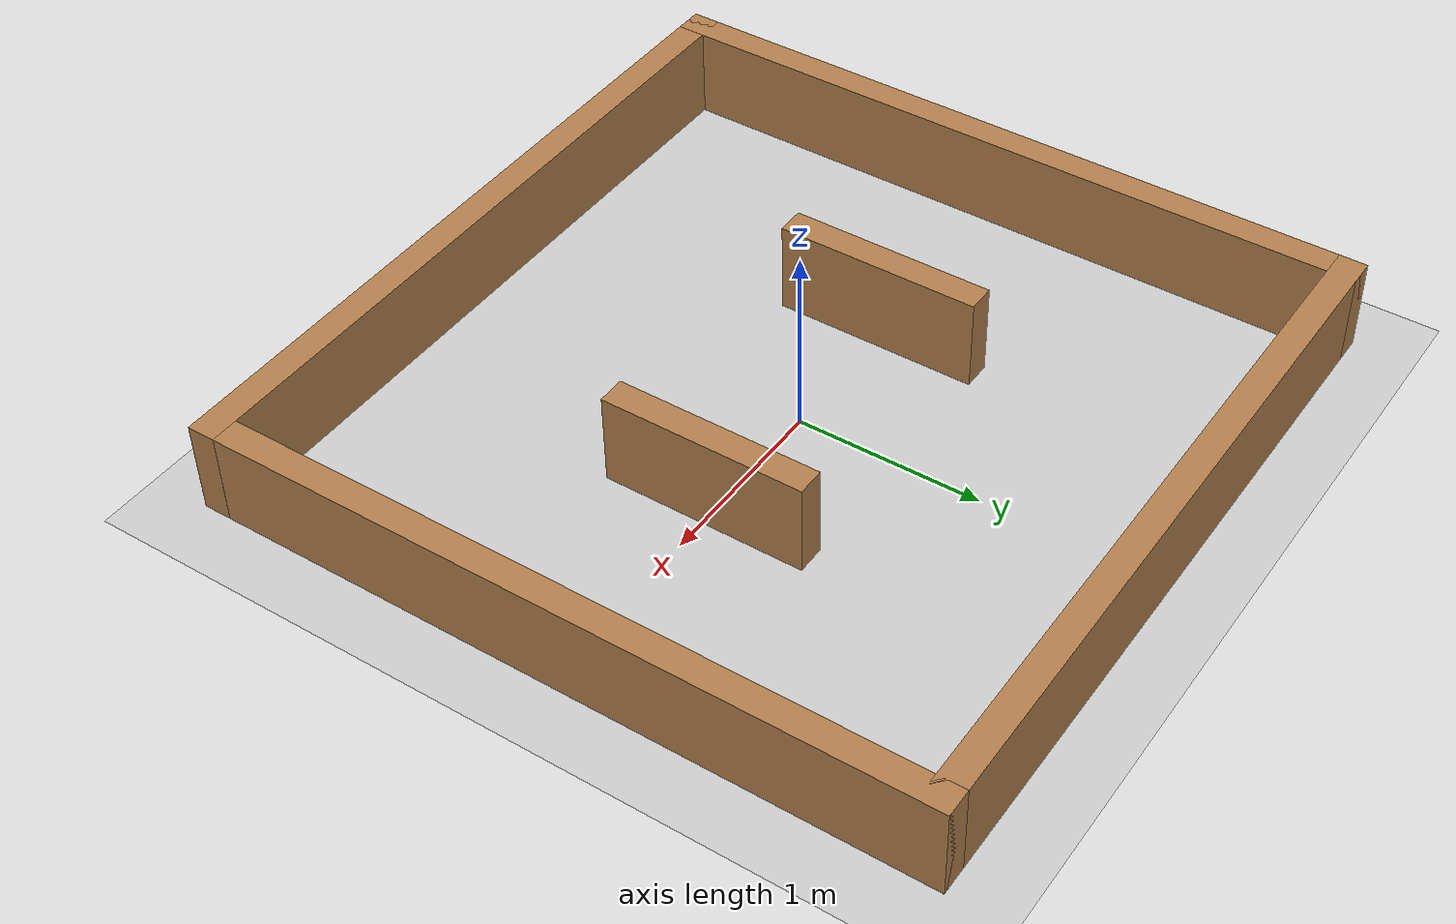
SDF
<sdf version='1.4'>
  <world name='default'>
    <!-- A global light source -->
    <include>
      <uri>model://sun</uri>
    </include>

    <!-- A ground plane -->
    <include>
      <uri>model://ground_plane</uri>
    </include>

    <physics type="ode">
      <real_time_update_rate>1000.0</real_time_update_rate>
      <max_step_size>0.001</max_step_size>
      <real_time_factor>1</real_time_factor>
      <ode>
        <solver>
          <type>quick</type>
          <iters>150</iters>
          <precon_iters>0</precon_iters>
          <sor>1.400000</sor>
          <use_dynamic_moi_rescaling>1</use_dynamic_moi_rescaling>
        </solver>
        <constraints>
          <cfm>0.00001</cfm>
          <erp>0.2</erp>
          <contact_max_correcting_vel>2000.000000</contact_max_correcting_vel>
          <contact_surface_layer>0.01000</contact_surface_layer>
        </constraints>
      </ode>
    </physics>

    <model name='GazeboStage1'>
        <pose frame=''>0 0 0 0 -0 0</pose>
        <link name='Wall_0'>
        <collision name='Wall_0_Collision'>
            <geometry>
            <box>
                <size>4 0.15 0.5</size>
            </box>
            </geometry>
            <pose frame=''>0 0 0.25 0 -0 0</pose>
        </collision>
        <visual name='Wall_0_Visual'>
            <pose frame=''>0 0 0.25 0 -0 0</pose>
            <geometry>
            <box>
                <size>4 0.15 0.5</size>
            </box>
            </geometry>
            <material>
            <script>
                <uri>file://media/materials/scripts/gazebo.material</uri>
                <name>Gazebo/Wood</name>
            </script>
            <ambient>1 1 1 1</ambient>
            </material>
            <meta>
            <layer>0</layer>
            </meta>
        </visual>
        <pose frame=''>0 1.925 0 0 -0 0</pose>
        </link>
        <link name='Wall_1'>
        <collision name='Wall_1_Collision'>
            <geometry>
            <box>
                <size>4 0.15 0.5</size>
            </box>
            </geometry>
            <pose frame=''>0 0 0.25 0 -0 0</pose>
        </collision>
        <visual name='Wall_1_Visual'>
            <pose frame=''>0 0 0.25 0 -0 0</pose>
            <geometry>
            <box>
                <size>4 0.15 0.5</size>
            </box>
            </geometry>
            <material>
            <script>
                <uri>file://media/materials/scripts/gazebo.material</uri>
                <name>Gazebo/Wood</name>
            </script>
            <ambient>1 1 1 1</ambient>
            </material>
            <meta>
            <layer>0</layer>
            </meta>
        </visual>
        <pose frame=''>1.925 0 0 0 -0 -1.5708</pose>
        </link>
        <link name='Wall_2'>
        <collision name='Wall_2_Collision'>
            <geometry>
            <box>
                <size>4 0.15 0.5</size>
            </box>
            </geometry>
            <pose frame=''>0 0 0.25 0 -0 0</pose>
        </collision>
        <visual name='Wall_2_Visual'>
            <pose frame=''>0 0 0.25 0 -0 0</pose>
            <geometry>
            <box>
                <size>4 0.15 0.5</size>
            </box>
            </geometry>
            <material>
            <script>
                <uri>file://media/materials/scripts/gazebo.material</uri>
                <name>Gazebo/Wood</name>
            </script>
            <ambient>1 1 1 1</ambient>
            </material>
            <meta>
            <layer>0</layer>
            </meta>
        </visual>
        <pose frame=''>0 -1.925 0 0 -0 3.14159</pose>
        </link>
        <link name='Wall_21'>
        <collision name='Wall_21_Collision'>
            <geometry>
            <box>
                <size>1.1 0.15 0.5</size>
            </box>
            </geometry>
            <pose frame=''>0 0 0.25 0 -0 0</pose>
        </collision>
        <visual name='Wall_21_Visual'>
            <pose frame=''>0 0 0.25 0 -0 0</pose>
            <geometry>
            <box>
                <size>1.1 0.15 0.5</size>
            </box>
            </geometry>
            <material>
            <script>
                <uri>file://media/materials/scripts/gazebo.material</uri>
                <name>Gazebo/Wood</name>
            </script>
            <ambient>1 1 1 1</ambient>
            </material>
            <meta>
            <layer>0</layer>
            </meta>
        </visual>
        <pose frame=''>0.75 0 0 0 0 -1.57058</pose>
        </link>
        <link name='Wall_22'>
        <collision name='Wall_22_Collision'>
            <geometry>
            <box>
                <size>1.1 0.15 0.5</size>
            </box>
            </geometry>
            <pose frame=''>0 0 0.25 0 -0 0</pose>
        </collision>
        <visual name='Wall_22_Visual'>
            <pose frame=''>0 0 0.25 0 -0 0</pose>
            <geometry>
            <box>
                <size>1.1 0.15 0.5</size>
            </box>
            </geometry>
            <material>
            <script>
                <uri>file://media/materials/scripts/gazebo.material</uri>
                <name>Gazebo/Wood</name>
            </script>
            <ambient>1 1 1 1</ambient>
            </material>
            <meta>
            <layer>0</layer>
            </meta>
        </visual>
        <pose frame=''>-0.75 0 0 0 0 -1.57058</pose>
        </link>
        <link name='Wall_3'>
        <collision name='Wall_3_Collision'>
            <geometry>
            <box>
                <size>4 0.15 0.5</size>
            </box>
            </geometry>
            <pose frame=''>0 0 0.25 0 -0 0</pose>
        </collision>
        <visual name='Wall_3_Visual'>
            <pose frame=''>0 0 0.25 0 -0 0</pose>
            <geometry>
            <box>
                <size>4 0.15 0.5</size>
            </box>
            </geometry>
            <material>
            <script>
                <uri>file://media/materials/scripts/gazebo.material</uri>
                <name>Gazebo/Wood</name>
            </script>
            <ambient>1 1 1 1</ambient>
            </material>
            <meta>
            <layer>0</layer>
            </meta>
        </visual>
        <pose frame=''>-1.925 0 0 0 -0 1.5708</pose>
        </link>
        <static>1</static>
    </model>

    <scene>
      <ambient>0.4 0.4 0.4 1</ambient>
      <background>0.7 0.7 0.7 1</background>
      <shadows>true</shadows>
    </scene>

    <gui fullscreen='0'>
      <camera name='user_camera'>
        <pose>0.0 0.0 17.0 0 1.5708 0</pose>
        <view_controller>orbit</view_controller>
      </camera>
    </gui>
  </world>
</sdf>
